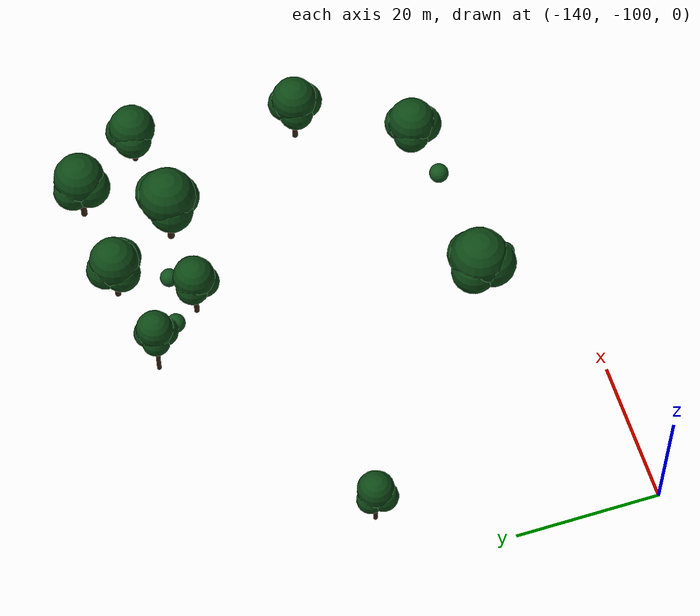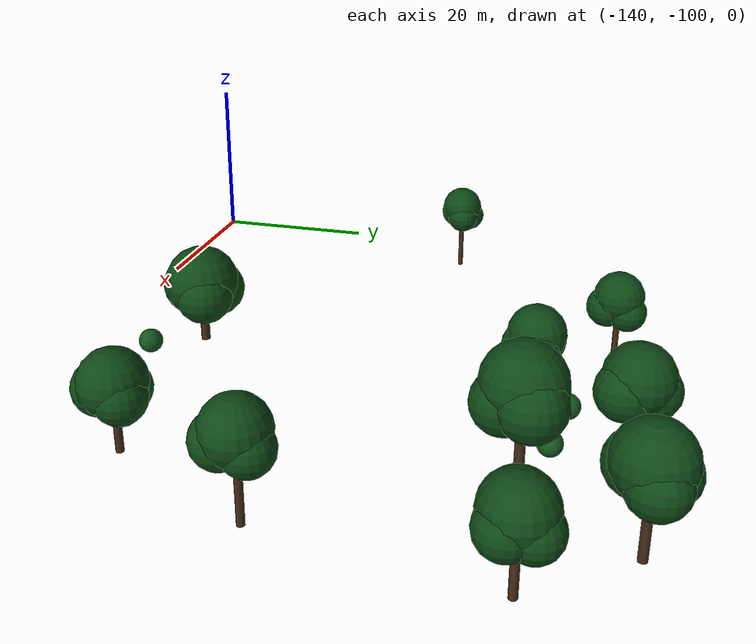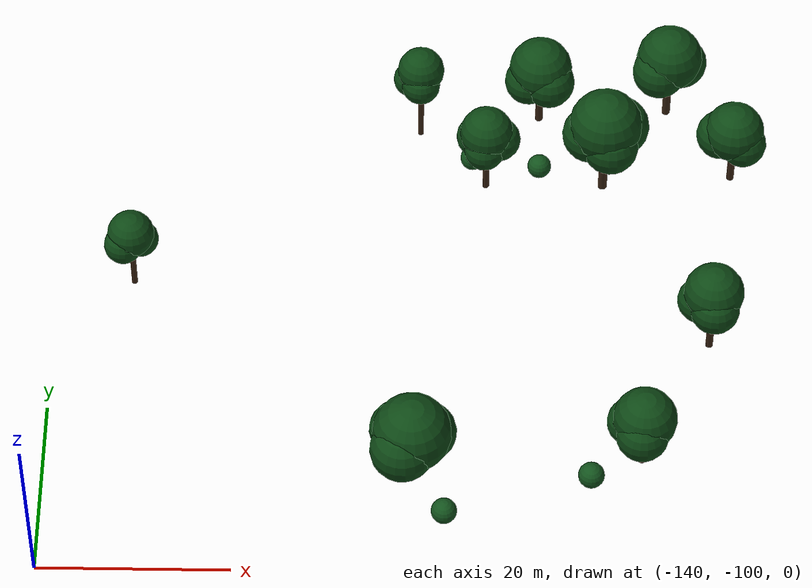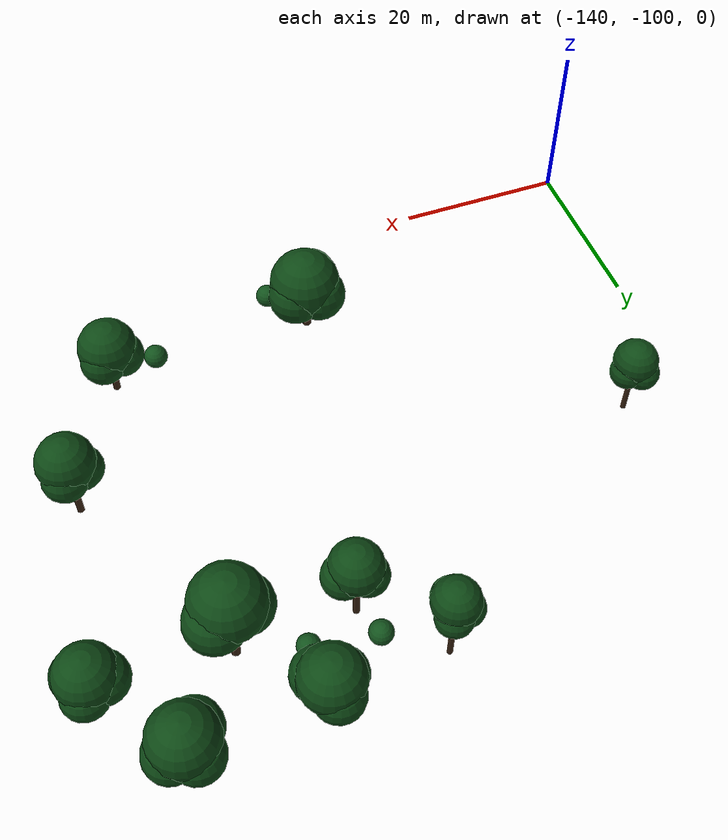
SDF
<sdf version="1.9">
 <world name="forest_monitoring">
  <model name="tree_48">
   <static>true</static>
   <pose>-101.44 -41.98 0 0 0 4.43</pose>
   <link name="link">
    <visual name="trunk">
     <pose>0 0 6.03 0 0 0</pose>
     <geometry><cylinder><radius>0.30</radius><length>12.06</length></cylinder></geometry>
     <material>
      <ambient>0.18 0.11 0.06 1</ambient>
      <diffuse>0.24 0.15 0.08 1</diffuse>
      <specular>0.1 0.1 0.1 1</specular>
      <pbr><metal><roughness>0.9</roughness><metalness>0.0</metalness></metal></pbr>
     </material>
    </visual>
    <visual name="canopy_0">
     <pose>0.00 0.00 10.61 0 0 0</pose>
     <geometry><sphere><radius>2.52</radius></sphere></geometry>
     <material>
      <ambient>0.03 0.16 0.05 1</ambient>
      <diffuse>0.05 0.28 0.08 1</diffuse>
      <specular>0.1 0.1 0.1 1</specular>
      <pbr><metal><roughness>1.0</roughness><metalness>0.0</metalness></metal></pbr>
     </material>
    </visual>
    <visual name="canopy_1">
     <pose>1.06 0.30 9.40 0 0 0</pose>
     <geometry><sphere><radius>2.07</radius></sphere></geometry>
     <material>
      <ambient>0.03 0.16 0.05 1</ambient>
      <diffuse>0.05 0.28 0.08 1</diffuse>
      <specular>0.1 0.1 0.1 1</specular>
      <pbr><metal><roughness>1.0</roughness><metalness>0.0</metalness></metal></pbr>
     </material>
    </visual>
    <visual name="canopy_2">
     <pose>-0.96 0.20 9.16 0 0 0</pose>
     <geometry><sphere><radius>1.97</radius></sphere></geometry>
     <material>
      <ambient>0.03 0.16 0.05 1</ambient>
      <diffuse>0.05 0.28 0.08 1</diffuse>
      <specular>0.1 0.1 0.1 1</specular>
      <pbr><metal><roughness>1.0</roughness><metalness>0.0</metalness></metal></pbr>
     </material>
    </visual>
    <visual name="canopy_3">
     <pose>0.10 -1.06 8.92 0 0 0</pose>
     <geometry><sphere><radius>1.92</radius></sphere></geometry>
     <material>
      <ambient>0.03 0.16 0.05 1</ambient>
      <diffuse>0.05 0.28 0.08 1</diffuse>
      <specular>0.1 0.1 0.1 1</specular>
      <pbr><metal><roughness>1.0</roughness><metalness>0.0</metalness></metal></pbr>
     </material>
    </visual>
   </link>
  </model>
  <model name="tree_49">
   <static>true</static>
   <pose>-81.55 -49.21 0 0 0 0.24</pose>
   <link name="link">
    <visual name="trunk">
     <pose>0 0 5.87 0 0 0</pose>
     <geometry><cylinder><radius>0.48</radius><length>11.74</length></cylinder></geometry>
     <material>
      <ambient>0.18 0.11 0.06 1</ambient>
      <diffuse>0.24 0.15 0.08 1</diffuse>
      <specular>0.1 0.1 0.1 1</specular>
      <pbr><metal><roughness>0.9</roughness><metalness>0.0</metalness></metal></pbr>
     </material>
    </visual>
    <visual name="canopy_0">
     <pose>0.00 0.00 10.33 0 0 0</pose>
     <geometry><sphere><radius>3.97</radius></sphere></geometry>
     <material>
      <ambient>0.03 0.16 0.05 1</ambient>
      <diffuse>0.05 0.28 0.08 1</diffuse>
      <specular>0.1 0.1 0.1 1</specular>
      <pbr><metal><roughness>1.0</roughness><metalness>0.0</metalness></metal></pbr>
     </material>
    </visual>
    <visual name="canopy_1">
     <pose>1.67 0.48 9.16 0 0 0</pose>
     <geometry><sphere><radius>3.25</radius></sphere></geometry>
     <material>
      <ambient>0.03 0.16 0.05 1</ambient>
      <diffuse>0.05 0.28 0.08 1</diffuse>
      <specular>0.1 0.1 0.1 1</specular>
      <pbr><metal><roughness>1.0</roughness><metalness>0.0</metalness></metal></pbr>
     </material>
    </visual>
    <visual name="canopy_2">
     <pose>-1.51 0.32 8.92 0 0 0</pose>
     <geometry><sphere><radius>3.09</radius></sphere></geometry>
     <material>
      <ambient>0.03 0.16 0.05 1</ambient>
      <diffuse>0.05 0.28 0.08 1</diffuse>
      <specular>0.1 0.1 0.1 1</specular>
      <pbr><metal><roughness>1.0</roughness><metalness>0.0</metalness></metal></pbr>
     </material>
    </visual>
    <visual name="canopy_3">
     <pose>0.16 -1.67 8.69 0 0 0</pose>
     <geometry><sphere><radius>3.01</radius></sphere></geometry>
     <material>
      <ambient>0.03 0.16 0.05 1</ambient>
      <diffuse>0.05 0.28 0.08 1</diffuse>
      <specular>0.1 0.1 0.1 1</specular>
      <pbr><metal><roughness>1.0</roughness><metalness>0.0</metalness></metal></pbr>
     </material>
    </visual>
   </link>
  </model>
  <model name="tree_50">
   <static>true</static>
   <pose>-70.53 -70.70 0 0 0 4.52</pose>
   <link name="link">
    <visual name="trunk">
     <pose>0 0 5.15 0 0 0</pose>
     <geometry><cylinder><radius>0.38</radius><length>10.30</length></cylinder></geometry>
     <material>
      <ambient>0.18 0.11 0.06 1</ambient>
      <diffuse>0.24 0.15 0.08 1</diffuse>
      <specular>0.1 0.1 0.1 1</specular>
      <pbr><metal><roughness>0.9</roughness><metalness>0.0</metalness></metal></pbr>
     </material>
    </visual>
    <visual name="canopy_0">
     <pose>0.00 0.00 9.06 0 0 0</pose>
     <geometry><sphere><radius>3.19</radius></sphere></geometry>
     <material>
      <ambient>0.03 0.16 0.05 1</ambient>
      <diffuse>0.05 0.28 0.08 1</diffuse>
      <specular>0.1 0.1 0.1 1</specular>
      <pbr><metal><roughness>1.0</roughness><metalness>0.0</metalness></metal></pbr>
     </material>
    </visual>
    <visual name="canopy_1">
     <pose>1.34 0.38 8.03 0 0 0</pose>
     <geometry><sphere><radius>2.62</radius></sphere></geometry>
     <material>
      <ambient>0.03 0.16 0.05 1</ambient>
      <diffuse>0.05 0.28 0.08 1</diffuse>
      <specular>0.1 0.1 0.1 1</specular>
      <pbr><metal><roughness>1.0</roughness><metalness>0.0</metalness></metal></pbr>
     </material>
    </visual>
    <visual name="canopy_2">
     <pose>-1.21 0.26 7.83 0 0 0</pose>
     <geometry><sphere><radius>2.49</radius></sphere></geometry>
     <material>
      <ambient>0.03 0.16 0.05 1</ambient>
      <diffuse>0.05 0.28 0.08 1</diffuse>
      <specular>0.1 0.1 0.1 1</specular>
      <pbr><metal><roughness>1.0</roughness><metalness>0.0</metalness></metal></pbr>
     </material>
    </visual>
    <visual name="canopy_3">
     <pose>0.13 -1.34 7.62 0 0 0</pose>
     <geometry><sphere><radius>2.42</radius></sphere></geometry>
     <material>
      <ambient>0.03 0.16 0.05 1</ambient>
      <diffuse>0.05 0.28 0.08 1</diffuse>
      <specular>0.1 0.1 0.1 1</specular>
      <pbr><metal><roughness>1.0</roughness><metalness>0.0</metalness></metal></pbr>
     </material>
    </visual>
   </link>
  </model>
  <model name="tree_51">
   <static>true</static>
   <pose>-77.93 -85.72 0 0 0 4.27</pose>
   <link name="link">
    <visual name="trunk">
     <pose>0 0 4.12 0 0 0</pose>
     <geometry><cylinder><radius>0.40</radius><length>8.25</length></cylinder></geometry>
     <material>
      <ambient>0.18 0.11 0.06 1</ambient>
      <diffuse>0.24 0.15 0.08 1</diffuse>
      <specular>0.1 0.1 0.1 1</specular>
      <pbr><metal><roughness>0.9</roughness><metalness>0.0</metalness></metal></pbr>
     </material>
    </visual>
    <visual name="canopy_0">
     <pose>0.00 0.00 7.26 0 0 0</pose>
     <geometry><sphere><radius>3.35</radius></sphere></geometry>
     <material>
      <ambient>0.03 0.16 0.05 1</ambient>
      <diffuse>0.05 0.28 0.08 1</diffuse>
      <specular>0.1 0.1 0.1 1</specular>
      <pbr><metal><roughness>1.0</roughness><metalness>0.0</metalness></metal></pbr>
     </material>
    </visual>
    <visual name="canopy_1">
     <pose>1.41 0.40 6.43 0 0 0</pose>
     <geometry><sphere><radius>2.75</radius></sphere></geometry>
     <material>
      <ambient>0.03 0.16 0.05 1</ambient>
      <diffuse>0.05 0.28 0.08 1</diffuse>
      <specular>0.1 0.1 0.1 1</specular>
      <pbr><metal><roughness>1.0</roughness><metalness>0.0</metalness></metal></pbr>
     </material>
    </visual>
    <visual name="canopy_2">
     <pose>-1.27 0.27 6.27 0 0 0</pose>
     <geometry><sphere><radius>2.62</radius></sphere></geometry>
     <material>
      <ambient>0.03 0.16 0.05 1</ambient>
      <diffuse>0.05 0.28 0.08 1</diffuse>
      <specular>0.1 0.1 0.1 1</specular>
      <pbr><metal><roughness>1.0</roughness><metalness>0.0</metalness></metal></pbr>
     </material>
    </visual>
    <visual name="canopy_3">
     <pose>0.13 -1.41 6.10 0 0 0</pose>
     <geometry><sphere><radius>2.55</radius></sphere></geometry>
     <material>
      <ambient>0.03 0.16 0.05 1</ambient>
      <diffuse>0.05 0.28 0.08 1</diffuse>
      <specular>0.1 0.1 0.1 1</specular>
      <pbr><metal><roughness>1.0</roughness><metalness>0.0</metalness></metal></pbr>
     </material>
    </visual>
   </link>
  </model>
  <model name="tree_52">
   <static>true</static>
   <pose>-74.37 -38.54 0 0 0 3.64</pose>
   <link name="link">
    <visual name="trunk">
     <pose>0 0 5.20 0 0 0</pose>
     <geometry><cylinder><radius>0.43</radius><length>10.40</length></cylinder></geometry>
     <material>
      <ambient>0.18 0.11 0.06 1</ambient>
      <diffuse>0.24 0.15 0.08 1</diffuse>
      <specular>0.1 0.1 0.1 1</specular>
      <pbr><metal><roughness>0.9</roughness><metalness>0.0</metalness></metal></pbr>
     </material>
    </visual>
    <visual name="canopy_0">
     <pose>0.00 0.00 9.15 0 0 0</pose>
     <geometry><sphere><radius>3.55</radius></sphere></geometry>
     <material>
      <ambient>0.03 0.16 0.05 1</ambient>
      <diffuse>0.05 0.28 0.08 1</diffuse>
      <specular>0.1 0.1 0.1 1</specular>
      <pbr><metal><roughness>1.0</roughness><metalness>0.0</metalness></metal></pbr>
     </material>
    </visual>
    <visual name="canopy_1">
     <pose>1.49 0.43 8.11 0 0 0</pose>
     <geometry><sphere><radius>2.91</radius></sphere></geometry>
     <material>
      <ambient>0.03 0.16 0.05 1</ambient>
      <diffuse>0.05 0.28 0.08 1</diffuse>
      <specular>0.1 0.1 0.1 1</specular>
      <pbr><metal><roughness>1.0</roughness><metalness>0.0</metalness></metal></pbr>
     </material>
    </visual>
    <visual name="canopy_2">
     <pose>-1.35 0.28 7.90 0 0 0</pose>
     <geometry><sphere><radius>2.77</radius></sphere></geometry>
     <material>
      <ambient>0.03 0.16 0.05 1</ambient>
      <diffuse>0.05 0.28 0.08 1</diffuse>
      <specular>0.1 0.1 0.1 1</specular>
      <pbr><metal><roughness>1.0</roughness><metalness>0.0</metalness></metal></pbr>
     </material>
    </visual>
    <visual name="canopy_3">
     <pose>0.14 -1.49 7.69 0 0 0</pose>
     <geometry><sphere><radius>2.69</radius></sphere></geometry>
     <material>
      <ambient>0.03 0.16 0.05 1</ambient>
      <diffuse>0.05 0.28 0.08 1</diffuse>
      <specular>0.1 0.1 0.1 1</specular>
      <pbr><metal><roughness>1.0</roughness><metalness>0.0</metalness></metal></pbr>
     </material>
    </visual>
   </link>
  </model>
  <model name="tree_53">
   <static>true</static>
   <pose>-131.82 -63.15 0 0 0 3.62</pose>
   <link name="link">
    <visual name="trunk">
     <pose>0 0 4.73 0 0 0</pose>
     <geometry><cylinder><radius>0.30</radius><length>9.46</length></cylinder></geometry>
     <material>
      <ambient>0.18 0.11 0.06 1</ambient>
      <diffuse>0.24 0.15 0.08 1</diffuse>
      <specular>0.1 0.1 0.1 1</specular>
      <pbr><metal><roughness>0.9</roughness><metalness>0.0</metalness></metal></pbr>
     </material>
    </visual>
    <visual name="canopy_0">
     <pose>0.00 0.00 8.32 0 0 0</pose>
     <geometry><sphere><radius>2.50</radius></sphere></geometry>
     <material>
      <ambient>0.03 0.16 0.05 1</ambient>
      <diffuse>0.05 0.28 0.08 1</diffuse>
      <specular>0.1 0.1 0.1 1</specular>
      <pbr><metal><roughness>1.0</roughness><metalness>0.0</metalness></metal></pbr>
     </material>
    </visual>
    <visual name="canopy_1">
     <pose>1.05 0.30 7.38 0 0 0</pose>
     <geometry><sphere><radius>2.05</radius></sphere></geometry>
     <material>
      <ambient>0.03 0.16 0.05 1</ambient>
      <diffuse>0.05 0.28 0.08 1</diffuse>
      <specular>0.1 0.1 0.1 1</specular>
      <pbr><metal><roughness>1.0</roughness><metalness>0.0</metalness></metal></pbr>
     </material>
    </visual>
    <visual name="canopy_2">
     <pose>-0.95 0.20 7.19 0 0 0</pose>
     <geometry><sphere><radius>1.95</radius></sphere></geometry>
     <material>
      <ambient>0.03 0.16 0.05 1</ambient>
      <diffuse>0.05 0.28 0.08 1</diffuse>
      <specular>0.1 0.1 0.1 1</specular>
      <pbr><metal><roughness>1.0</roughness><metalness>0.0</metalness></metal></pbr>
     </material>
    </visual>
    <visual name="canopy_3">
     <pose>0.10 -1.05 7.00 0 0 0</pose>
     <geometry><sphere><radius>1.90</radius></sphere></geometry>
     <material>
      <ambient>0.03 0.16 0.05 1</ambient>
      <diffuse>0.05 0.28 0.08 1</diffuse>
      <specular>0.1 0.1 0.1 1</specular>
      <pbr><metal><roughness>1.0</roughness><metalness>0.0</metalness></metal></pbr>
     </material>
    </visual>
   </link>
  </model>
  <model name="tree_54">
   <static>true</static>
   <pose>-94.27 -49.34 0 0 0 6.00</pose>
   <link name="link">
    <visual name="trunk">
     <pose>0 0 5.10 0 0 0</pose>
     <geometry><cylinder><radius>0.35</radius><length>10.21</length></cylinder></geometry>
     <material>
      <ambient>0.18 0.11 0.06 1</ambient>
      <diffuse>0.24 0.15 0.08 1</diffuse>
      <specular>0.1 0.1 0.1 1</specular>
      <pbr><metal><roughness>0.9</roughness><metalness>0.0</metalness></metal></pbr>
     </material>
    </visual>
    <visual name="canopy_0">
     <pose>0.00 0.00 8.98 0 0 0</pose>
     <geometry><sphere><radius>2.89</radius></sphere></geometry>
     <material>
      <ambient>0.03 0.16 0.05 1</ambient>
      <diffuse>0.05 0.28 0.08 1</diffuse>
      <specular>0.1 0.1 0.1 1</specular>
      <pbr><metal><roughness>1.0</roughness><metalness>0.0</metalness></metal></pbr>
     </material>
    </visual>
    <visual name="canopy_1">
     <pose>1.22 0.35 7.96 0 0 0</pose>
     <geometry><sphere><radius>2.37</radius></sphere></geometry>
     <material>
      <ambient>0.03 0.16 0.05 1</ambient>
      <diffuse>0.05 0.28 0.08 1</diffuse>
      <specular>0.1 0.1 0.1 1</specular>
      <pbr><metal><roughness>1.0</roughness><metalness>0.0</metalness></metal></pbr>
     </material>
    </visual>
    <visual name="canopy_2">
     <pose>-1.10 0.23 7.76 0 0 0</pose>
     <geometry><sphere><radius>2.26</radius></sphere></geometry>
     <material>
      <ambient>0.03 0.16 0.05 1</ambient>
      <diffuse>0.05 0.28 0.08 1</diffuse>
      <specular>0.1 0.1 0.1 1</specular>
      <pbr><metal><roughness>1.0</roughness><metalness>0.0</metalness></metal></pbr>
     </material>
    </visual>
    <visual name="canopy_3">
     <pose>0.12 -1.22 7.56 0 0 0</pose>
     <geometry><sphere><radius>2.20</radius></sphere></geometry>
     <material>
      <ambient>0.03 0.16 0.05 1</ambient>
      <diffuse>0.05 0.28 0.08 1</diffuse>
      <specular>0.1 0.1 0.1 1</specular>
      <pbr><metal><roughness>1.0</roughness><metalness>0.0</metalness></metal></pbr>
     </material>
    </visual>
   </link>
  </model>
  <model name="tree_56">
   <static>true</static>
   <pose>-88.43 -39.69 0 0 0 5.09</pose>
   <link name="link">
    <visual name="trunk">
     <pose>0 0 4.84 0 0 0</pose>
     <geometry><cylinder><radius>0.41</radius><length>9.68</length></cylinder></geometry>
     <material>
      <ambient>0.18 0.11 0.06 1</ambient>
      <diffuse>0.24 0.15 0.08 1</diffuse>
      <specular>0.1 0.1 0.1 1</specular>
      <pbr><metal><roughness>0.9</roughness><metalness>0.0</metalness></metal></pbr>
     </material>
    </visual>
    <visual name="canopy_0">
     <pose>0.00 0.00 8.52 0 0 0</pose>
     <geometry><sphere><radius>3.41</radius></sphere></geometry>
     <material>
      <ambient>0.03 0.16 0.05 1</ambient>
      <diffuse>0.05 0.28 0.08 1</diffuse>
      <specular>0.1 0.1 0.1 1</specular>
      <pbr><metal><roughness>1.0</roughness><metalness>0.0</metalness></metal></pbr>
     </material>
    </visual>
    <visual name="canopy_1">
     <pose>1.43 0.41 7.55 0 0 0</pose>
     <geometry><sphere><radius>2.80</radius></sphere></geometry>
     <material>
      <ambient>0.03 0.16 0.05 1</ambient>
      <diffuse>0.05 0.28 0.08 1</diffuse>
      <specular>0.1 0.1 0.1 1</specular>
      <pbr><metal><roughness>1.0</roughness><metalness>0.0</metalness></metal></pbr>
     </material>
    </visual>
    <visual name="canopy_2">
     <pose>-1.30 0.27 7.36 0 0 0</pose>
     <geometry><sphere><radius>2.66</radius></sphere></geometry>
     <material>
      <ambient>0.03 0.16 0.05 1</ambient>
      <diffuse>0.05 0.28 0.08 1</diffuse>
      <specular>0.1 0.1 0.1 1</specular>
      <pbr><metal><roughness>1.0</roughness><metalness>0.0</metalness></metal></pbr>
     </material>
    </visual>
    <visual name="canopy_3">
     <pose>0.14 -1.43 7.17 0 0 0</pose>
     <geometry><sphere><radius>2.59</radius></sphere></geometry>
     <material>
      <ambient>0.03 0.16 0.05 1</ambient>
      <diffuse>0.05 0.28 0.08 1</diffuse>
      <specular>0.1 0.1 0.1 1</specular>
      <pbr><metal><roughness>1.0</roughness><metalness>0.0</metalness></metal></pbr>
     </material>
    </visual>
   </link>
  </model>
  <model name="tree_57">
   <static>true</static>
   <pose>-101.77 -87.61 0 0 0 3.88</pose>
   <link name="link">
    <visual name="trunk">
     <pose>0 0 4.02 0 0 0</pose>
     <geometry><cylinder><radius>0.50</radius><length>8.04</length></cylinder></geometry>
     <material>
      <ambient>0.18 0.11 0.06 1</ambient>
      <diffuse>0.24 0.15 0.08 1</diffuse>
      <specular>0.1 0.1 0.1 1</specular>
      <pbr><metal><roughness>0.9</roughness><metalness>0.0</metalness></metal></pbr>
     </material>
    </visual>
    <visual name="canopy_0">
     <pose>0.00 0.00 7.07 0 0 0</pose>
     <geometry><sphere><radius>4.13</radius></sphere></geometry>
     <material>
      <ambient>0.03 0.16 0.05 1</ambient>
      <diffuse>0.05 0.28 0.08 1</diffuse>
      <specular>0.1 0.1 0.1 1</specular>
      <pbr><metal><roughness>1.0</roughness><metalness>0.0</metalness></metal></pbr>
     </material>
    </visual>
    <visual name="canopy_1">
     <pose>1.74 0.50 6.27 0 0 0</pose>
     <geometry><sphere><radius>3.39</radius></sphere></geometry>
     <material>
      <ambient>0.03 0.16 0.05 1</ambient>
      <diffuse>0.05 0.28 0.08 1</diffuse>
      <specular>0.1 0.1 0.1 1</specular>
      <pbr><metal><roughness>1.0</roughness><metalness>0.0</metalness></metal></pbr>
     </material>
    </visual>
    <visual name="canopy_2">
     <pose>-1.57 0.33 6.11 0 0 0</pose>
     <geometry><sphere><radius>3.22</radius></sphere></geometry>
     <material>
      <ambient>0.03 0.16 0.05 1</ambient>
      <diffuse>0.05 0.28 0.08 1</diffuse>
      <specular>0.1 0.1 0.1 1</specular>
      <pbr><metal><roughness>1.0</roughness><metalness>0.0</metalness></metal></pbr>
     </material>
    </visual>
    <visual name="canopy_3">
     <pose>0.17 -1.74 5.95 0 0 0</pose>
     <geometry><sphere><radius>3.14</radius></sphere></geometry>
     <material>
      <ambient>0.03 0.16 0.05 1</ambient>
      <diffuse>0.05 0.28 0.08 1</diffuse>
      <specular>0.1 0.1 0.1 1</specular>
      <pbr><metal><roughness>1.0</roughness><metalness>0.0</metalness></metal></pbr>
     </material>
    </visual>
   </link>
  </model>
  <model name="tree_58">
   <static>true</static>
   <pose>-67.58 -47.84 0 0 0 2.64</pose>
   <link name="link">
    <visual name="trunk">
     <pose>0 0 4.48 0 0 0</pose>
     <geometry><cylinder><radius>0.39</radius><length>8.96</length></cylinder></geometry>
     <material>
      <ambient>0.18 0.11 0.06 1</ambient>
      <diffuse>0.24 0.15 0.08 1</diffuse>
      <specular>0.1 0.1 0.1 1</specular>
      <pbr><metal><roughness>0.9</roughness><metalness>0.0</metalness></metal></pbr>
     </material>
    </visual>
    <visual name="canopy_0">
     <pose>0.00 0.00 7.89 0 0 0</pose>
     <geometry><sphere><radius>3.23</radius></sphere></geometry>
     <material>
      <ambient>0.03 0.16 0.05 1</ambient>
      <diffuse>0.05 0.28 0.08 1</diffuse>
      <specular>0.1 0.1 0.1 1</specular>
      <pbr><metal><roughness>1.0</roughness><metalness>0.0</metalness></metal></pbr>
     </material>
    </visual>
    <visual name="canopy_1">
     <pose>1.36 0.39 6.99 0 0 0</pose>
     <geometry><sphere><radius>2.65</radius></sphere></geometry>
     <material>
      <ambient>0.03 0.16 0.05 1</ambient>
      <diffuse>0.05 0.28 0.08 1</diffuse>
      <specular>0.1 0.1 0.1 1</specular>
      <pbr><metal><roughness>1.0</roughness><metalness>0.0</metalness></metal></pbr>
     </material>
    </visual>
    <visual name="canopy_2">
     <pose>-1.23 0.26 6.81 0 0 0</pose>
     <geometry><sphere><radius>2.52</radius></sphere></geometry>
     <material>
      <ambient>0.03 0.16 0.05 1</ambient>
      <diffuse>0.05 0.28 0.08 1</diffuse>
      <specular>0.1 0.1 0.1 1</specular>
      <pbr><metal><roughness>1.0</roughness><metalness>0.0</metalness></metal></pbr>
     </material>
    </visual>
    <visual name="canopy_3">
     <pose>0.13 -1.36 6.63 0 0 0</pose>
     <geometry><sphere><radius>2.45</radius></sphere></geometry>
     <material>
      <ambient>0.03 0.16 0.05 1</ambient>
      <diffuse>0.05 0.28 0.08 1</diffuse>
      <specular>0.1 0.1 0.1 1</specular>
      <pbr><metal><roughness>1.0</roughness><metalness>0.0</metalness></metal></pbr>
     </material>
    </visual>
   </link>
  </model>
  <model name="bush_16">
   <static>true</static>
   <pose>-95.70 -45.96 0.65 0 0 0</pose>
   <link name="link">
    <visual name="visual">
     <geometry><sphere><radius>1.336</radius></sphere></geometry>
     <material>
      <ambient>0.04 0.20 0.07 1</ambient>
      <diffuse>0.07 0.32 0.11 1</diffuse>
      <specular>0.1 0.1 0.1 1</specular>
      <pbr><metal><roughness>0.8</roughness><metalness>0.0</metalness></metal></pbr>
     </material>
    </visual>
   </link>
  </model>
  <model name="bush_17">
   <static>true</static>
   <pose>-83.22 -88.16 0.65 0 0 0</pose>
   <link name="link">
    <visual name="visual">
     <geometry><sphere><radius>1.377</radius></sphere></geometry>
     <material>
      <ambient>0.04 0.20 0.07 1</ambient>
      <diffuse>0.07 0.32 0.11 1</diffuse>
      <specular>0.1 0.1 0.1 1</specular>
      <pbr><metal><roughness>0.8</roughness><metalness>0.0</metalness></metal></pbr>
     </material>
    </visual>
   </link>
  </model>
  <model name="bush_18">
   <static>true</static>
   <pose>-88.43 -47.05 0.65 0 0 0</pose>
   <link name="link">
    <visual name="visual">
     <geometry><sphere><radius>1.289</radius></sphere></geometry>
     <material>
      <ambient>0.04 0.20 0.07 1</ambient>
      <diffuse>0.07 0.32 0.11 1</diffuse>
      <specular>0.1 0.1 0.1 1</specular>
      <pbr><metal><roughness>0.8</roughness><metalness>0.0</metalness></metal></pbr>
     </material>
    </visual>
   </link>
  </model>
  <model name="bush_19">
   <static>true</static>
   <pose>-98.41 -92.84 0.65 0 0 0</pose>
   <link name="link">
    <visual name="visual">
     <geometry><sphere><radius>1.348</radius></sphere></geometry>
     <material>
      <ambient>0.04 0.20 0.07 1</ambient>
      <diffuse>0.07 0.32 0.11 1</diffuse>
      <specular>0.1 0.1 0.1 1</specular>
      <pbr><metal><roughness>0.8</roughness><metalness>0.0</metalness></metal></pbr>
     </material>
    </visual>
   </link>
  </model>
 </world>
</sdf>
